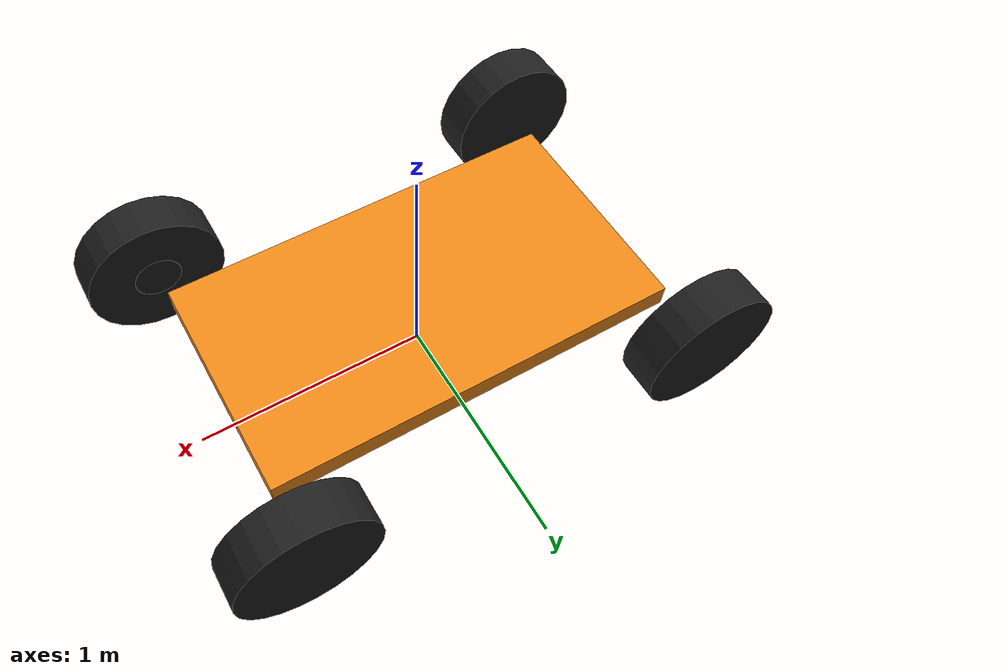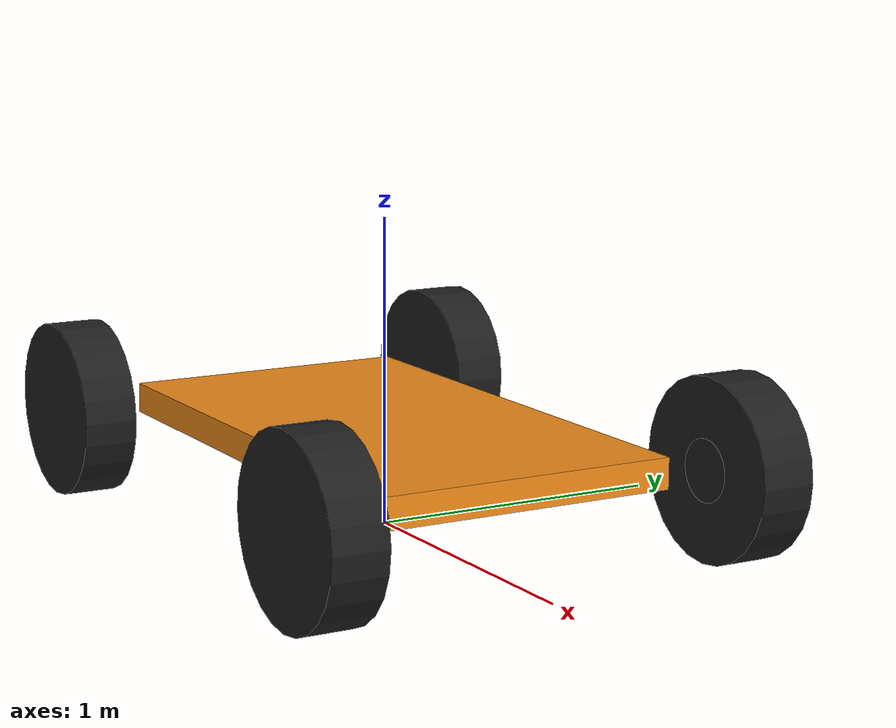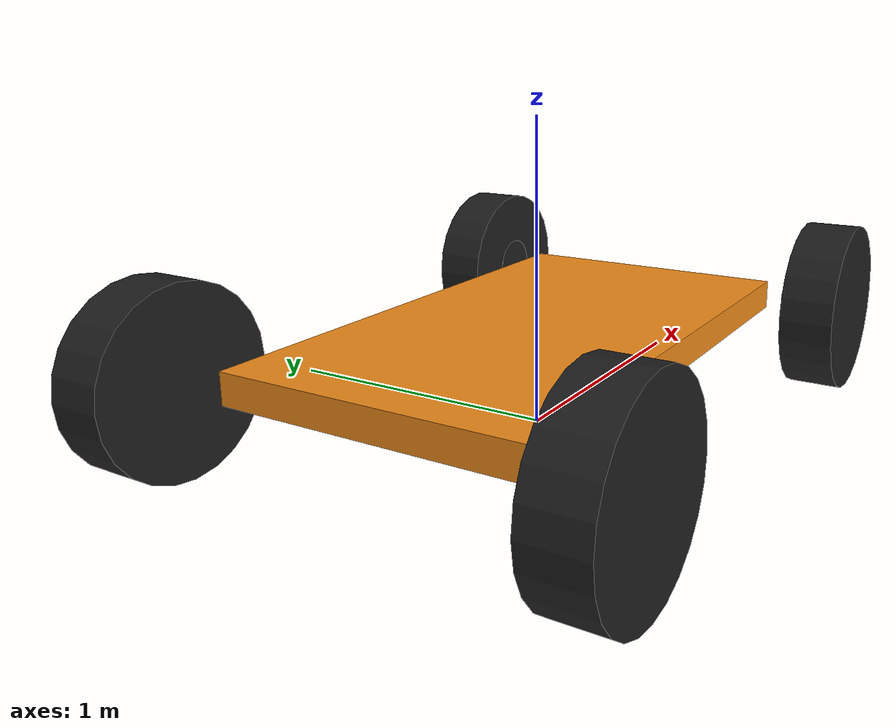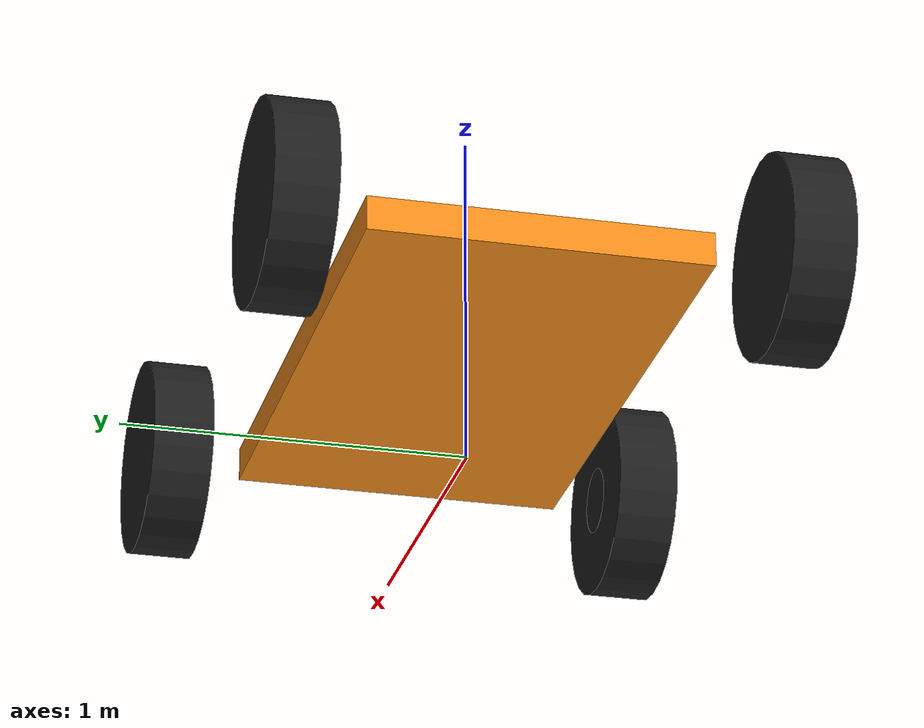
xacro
<?xml version="1.0"?>
<robot name="cart" xmlns:xacro="http://www.ros.org/wiki/xacro">

<!-- Vehicle Dimensions -->
<xacro:property name="wheel_base_length" value="1.753"/>
<xacro:property name="wheel_base_width" value="1.245"/>
<xacro:property name="wheel_diameter" value="0.584"/>
<xacro:property name="wheel_thickness" value="0.178"/>

<!-- Macros -->
<xacro:macro name="wheel" params="name radius width material caster_offset mass">
  <link name="${name}">
		<collision>
		  <origin xyz="0 0 0" rpy="0 1.5708 1.5708" />
		  <geometry>
		   <cylinder length="${width}" radius="${radius}"/>
		  </geometry>
		</collision>
		<visual>
		  <origin xyz="0 0 0" rpy="0 1.5708 1.5708" />
		  <geometry>
			<cylinder length="${width}" radius="${radius}"/>
		  </geometry>
		  <material name="black"/>
		</visual>
		<inertial>
		  <origin xyz="0 0 0" rpy="0 1.5708 1.5708" />
		  <mass value="0.2"/>
      <cylinder_inirtia m="${mass}" r="${radius}" h="${width}" />
	  </inertial>
	</link>
  <gazebo reference="${name}">
    <mu1 value="2.0"/>
    <mu2 value="2.0"/>
    <kp  value="10000000.0" />
    <kd  value="1.0" />
    <fdir1 value="0 1 0"/>
    <material>${material}</material>
  </gazebo>
</xacro:macro>

<xacro:macro name="wheel_steer" params="lr lr_reflect">
  <xacro:wheel name="${lr}" radius="${wheel_diameter/2}" width="${wheel_thickness}" material="Gazebo/Gray" caster_offset="0" mass="6"/>
  <xacro:wheel name="${lr}_assembly" radius="0.1" width="0.001" material="Gazebo/White" caster_offset="-.5" mass="0.5" />

  <joint name="${lr}_hinge" type="revolute">
    <parent link="chassis"/>
    <child link="${lr}_assembly"/>
    <origin xyz="${wheel_base_length/2} ${lr_reflect*(wheel_base_width/2)} ${wheel_diameter/2}" rpy="0 0 0" />
    <axis xyz="0 0 1" rpy="0 0 0" />
    <limit effort="100" velocity="1" lower="-0.4" upper="0.4"/>
    <dynamics damping="0.0" friction="0.0"/>
  </joint>
  <joint name="${lr}_rotate" type="continuous">
    <parent link="${lr}_assembly"/>
    <child link="${lr}"/>
    <origin xyz="0.0 ${lr_reflect*(wheel_thickness/2)} 0.0" rpy="0 0 0" />
    <axis xyz="0 1 0" rpy="0 0 0" />
    <limit effort="100" velocity="50"/>
    <dynamics damping="0.0" friction="0.0"/>
  </joint>
  <transmission name="trans_${lr}_hing">
    <type>transmission_interface/SimpleTransmission</type>
    <joint name="${lr}_hinge">
      <hardwareInterface>hardware_interface/EffortJointInterface</hardwareInterface>
    </joint>
    <actuator name="motor_${lr}_front">
      <hardwareInterface>hardware_interface/EffortJointInterface</hardwareInterface>
      <mechanicalReduction>1</mechanicalReduction>
    </actuator>
  </transmission>
  <transmission name="trans_${lr}_rotate">
    <type>transmission_interface/SimpleTransmission</type>
    <joint name="${lr}_rotate">
      <hardwareInterface>hardware_interface/EffortJointInterface</hardwareInterface>
    </joint>
    <actuator name="motor_${lr}_rotate">
      <hardwareInterface>hardware_interface/EffortJointInterface</hardwareInterface>
      <mechanicalReduction>1</mechanicalReduction>
    </actuator>
  </transmission>
</xacro:macro>

<xacro:macro name="rear_wheel" params="lr lr_reflect">
  <xacro:wheel name="${lr}" radius="${wheel_diameter/2}" width="${wheel_thickness}" material="Gazebo/Gray" caster_offset="0" mass="6" />

  <joint name="${lr}_rotate" type="continuous">
    <parent link="chassis"/>
    <child link="${lr}"/>
    <origin xyz="${-wheel_base_length/2} ${lr_reflect*((wheel_base_width/2)+(wheel_thickness/2))} ${wheel_diameter/2}" rpy="0 0 0" />
    <axis xyz="0 1 0" rpy="0 0 0" />
    <limit effort="0" velocity="0"/>
    <dynamics damping="0.0" friction="0.0"/>
  </joint>
  <transmission name="trans_${lr}_rotate">
    <type>transmission_interface/SimpleTransmission</type>
    <joint name="${lr}_rotate">
      <hardwareInterface>hardware_interface/EffortJointInterface</hardwareInterface>
    </joint>
    <actuator name="motor_${lr}_rotate">
      <hardwareInterface>hardware_interface/EffortJointInterface</hardwareInterface>
      <mechanicalReduction>1</mechanicalReduction>
    </actuator>
  </transmission>

</xacro:macro>

  <macro name="box_inertia" params="x y z m">
		<inertia  ixx="${m*(y*y+z*z)/12}" ixy = "0" ixz = "0"
		          iyy="${m*(x*x+z*z)/12}" iyz = "0"
		          izz="${m*(x*x+z*z)/12}" />
	</macro>
  <macro name="cylinder_inirtia" params="m r h">
    <inertia  ixx="${(m*((3*r*r)+(h*h)))/12}" ixy = "0" ixz = "0"
              iyy="${(m*((3*r*r)+(h*h)))/12}" iyz = "0"
              izz="${(m*r*r)/2}" />
  </macro>

<!-- Macros End -->

    <!-- Base link -->
  <link name="base_link">
    <visual>
      <geometry>
        <box size="0.01 0.01 0.01"/>
      </geometry>
    </visual>
  </link>

	<!-- Chassis START-->
  <joint name="base_joint" type="fixed">
    <parent link="base_link"/>
    <child link="chassis"/>
  </joint>

  <link name="chassis">
    <collision>
      <origin xyz="0 0 ${wheel_diameter/2}" rpy="0 0 0"/>
      <geometry>
            <box size="${wheel_base_length} ${wheel_base_width-(wheel_thickness*1.5)} 0.1"/>
      </geometry>
    </collision>
    <visual>
      <origin xyz="0 0 0.3" rpy="0 0 0"/>
      <geometry>
         <box size="${wheel_base_length} ${wheel_base_width-(wheel_thickness*1.5)} 0.1"/>
      </geometry>
      <material name="orange"/>
    </visual>
    <inertial>
      <mass value="1"/>
      <origin xyz="0 0 0.3" rpy="0 0 0"/>
      <box_inertia x="${wheel_base_length}" y="${wheel_base_width-(wheel_thickness*1.5)}" z=".1" m="1" />
    </inertial>
  </link>

  <gazebo reference="chassis">
    <!--Stiffness -->
    <kp>1000000.0</kp>
    <!--Dampening-->
    <kd>0.1</kd>
    <dampingFactor>0</dampingFactor>
    <material>Gazebo/White</material>
    <selfCollide>true</selfCollide>
    <turnGravityOff>false</turnGravityOff>
    <mu1 value="0.1"/>
    <mu2 value="0.1"/>
    <fdir1 value="0 0 0"/>
  </gazebo>
	<!-- Chassis END -->

  <xacro:wheel_steer lr="right_wheel" lr_reflect="-1" />
  <xacro:wheel_steer lr="left_wheel" lr_reflect="1" />
  <xacro:rear_wheel lr="right_wheel_rear" lr_reflect="-1" />
  <xacro:rear_wheel lr="left_wheel_rear" lr_reflect="1" />

  <gazebo>
		<plugin name="gazebo_ros_control" filename="libgazebo_ros_control.so">
		  <robotNamespace>/cart</robotNamespace>
			<legacyModeNS>true</legacyModeNS>
		</plugin>
	</gazebo>

  <gazebo>
    <plugin name="ground_truth" filename="libgazebo_ros_p3d.so">
      <frameName>map</frameName>
      <bodyName>base_link</bodyName>
      <topicName>odom</topicName>
      <updateRate>30.0</updateRate>
    </plugin>
  </gazebo>

</robot>
